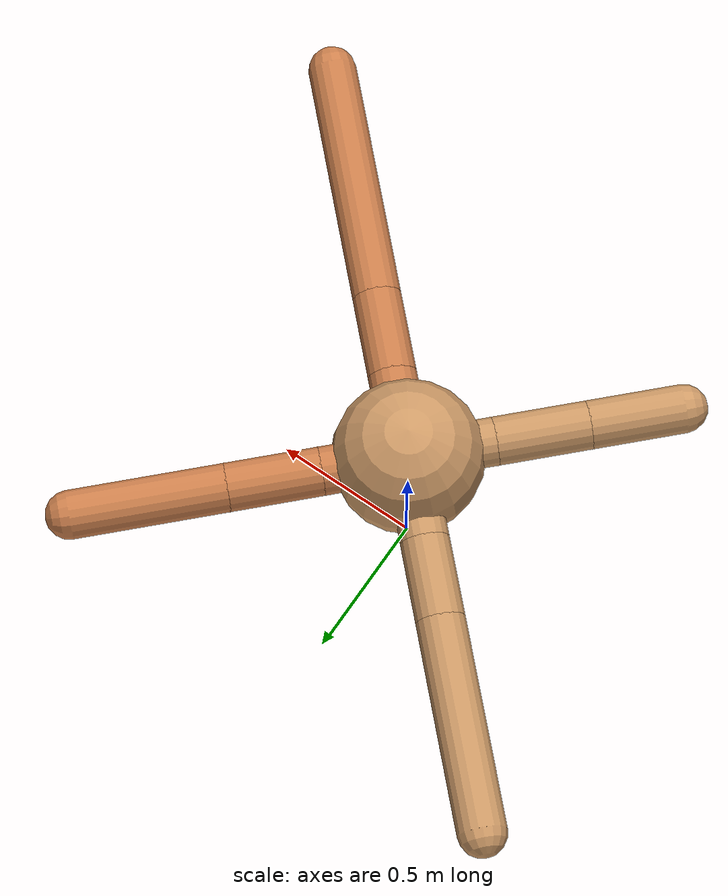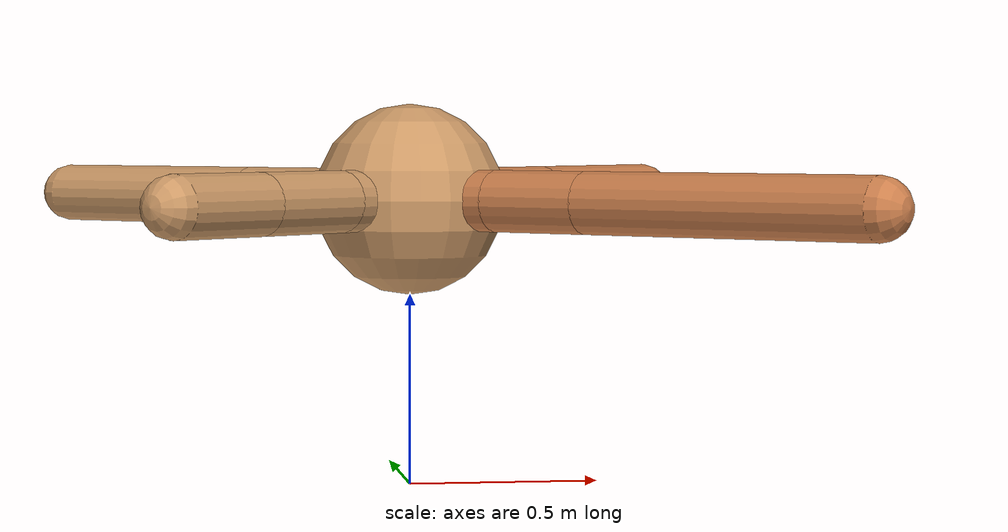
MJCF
<mujoco model="ant">
  <compiler angle="degree" coordinate="local" inertiafromgeom="true" />
  <option integrator="RK4" timestep="0.01" />
  <custom>
    <numeric data="0.0 0.0 0.55 1.0 0.0 0.0 0.0 0.0 1.0 0.0 -1.0 0.0 -1.0 0.0 1.0" name="init_qpos" />
  </custom>
  <default>
    <joint armature="1" damping="1" limited="true" />
    <geom conaffinity="0" condim="3" density="5.0" friction="1.5 0.1 0.1" margin="0.01" rgba="0.8 0.6 0.4 1" />
  </default>
  <worldbody>
    <body name="torso" pos="0 0 0.75">
      <geom name="torso_geom" pos="0 0 0" size="0.25" type="sphere" />

      <body name="front_left_leg" pos="0 0 0">
        <geom fromto="0.0 0.0 0.0 0.2 0.2 0.0" name="aux_1_geom" size="0.08" type="capsule" rgba=".8 .5 .3 1" />
        <body name="aux_1" pos="0.2 0.2 0.0">
          <joint axis="0 0 1" name="hip_1" pos="0.0 0.0 0.0" range="-40 40" type="hinge" />
          <geom fromto="0.0 0.0 0.0 0.21641676483995165 0.21641676483995165 0.0" name="left_leg_geom" size="0.08" type="capsule" rgba=".8 .5 .3 1" />
          <body pos="0.21641676483995165 0.21641676483995165 0.0" name="front_left_foot">
            <joint axis="-1 1 0" name="ankle_1" pos="0.0 0.0 0.0" range="30 100" type="hinge" />
            <geom fromto="0.0 0.0 0.0 0.35945613774381824 0.35945613774381824 0.0" name="left_ankle_geom" size="0.08" type="capsule" rgba=".8 .5 .3 1" />
          </body>
        </body>
      </body>
      <body name="front_right_leg" pos="0 0 0">
        <geom fromto="0.0 0.0 0.0 -0.20423607149539455 0.20423607149539455 0.0" name="aux_2_geom" size="0.08" type="capsule" />
        <body name="aux_2" pos="-0.20423607149539455 0.20423607149539455 0.0">
          <joint axis="0 0 1" name="hip_2" pos="0.0 0.0 0.0" range="-40 40" type="hinge" />
          <geom fromto="0.0 0.0 0.0 -0.1889764588465865 0.1889764588465865 0.0" name="right_leg_geom" size="0.08" type="capsule" />
          <body pos="-0.1889764588465865 0.1889764588465865 0.0" name="front_right_foot">
            <joint axis="1 1 0" name="ankle_2" pos="0.0 0.0 0.0" range="-100 -30" type="hinge" />
            <geom fromto="0.0 0.0 0.0 -0.49200950379749 0.49200950379749 0.0" name="right_ankle_geom" size="0.08" type="capsule" />
          </body>
        </body>
      </body>
      <body name="left_back_leg" pos="0 0 0">
        <geom fromto="0.0 0.0 0.0 -0.2 -0.2 0.0" name="aux_3_geom" size="0.08" type="capsule" />
        <body name="aux_3" pos="-0.2 -0.2 0.0">
          <joint axis="0 0 1" name="hip_3" pos="0.0 0.0 0.0" range="-40 40" type="hinge" />
          <geom fromto="0.0 0.0 0.0 -0.2173650872951366 -0.2173650872951366 0.0" name="back_leg_geom" size="0.08" type="capsule" />
          <body pos="-0.2173650872951366 -0.2173650872951366 0.0" name="left_back_foot">
            <joint axis="-1 1 0" name="ankle_3" pos="0.0 0.0 0.0" range="-100 -30" type="hinge" />
            <geom fromto="0.0 0.0 0.0 -0.2199230776944442 -0.2199230776944442 0.0" name="third_ankle_geom" size="0.08" type="capsule" />
          </body>
        </body>
      </body>
      <body name="right_back_leg" pos="0 0 0">
        <geom fromto="0.0 0.0 0.0 0.2 -0.2 0.0" name="aux_4_geom" size="0.08" type="capsule" rgba=".8 .5 .3 1" />
        <body name="aux_4" pos="0.2 -0.2 0.0">
          <joint axis="0 0 1" name="hip_4" pos="0.0 0.0 0.0" range="-40 40" type="hinge" />
          <geom fromto="0.0 0.0 0.0 0.1963397966740288 -0.1963397966740288 0.0" name="rightback_leg_geom" size="0.08" type="capsule" rgba=".8 .5 .3 1" />
          <body pos="0.1963397966740288 -0.1963397966740288 0.0" name="right_back_foot">
            <joint axis="1 1 0" name="ankle_4" pos="0.0 0.0 0.0" range="30 100" type="hinge" />
            <geom fromto="0.0 0.0 0.0 0.5824500072252441 -0.5824500072252441 0.0" name="fourth_ankle_geom" size="0.08" type="capsule" rgba=".8 .5 .3 1" />
          </body>
        </body>
      </body>
    </body>
  </worldbody>
  <actuator>
    <motor ctrllimited="true" ctrlrange="-1.0 1.0" joint="hip_4" gear="150" />
    <motor ctrllimited="true" ctrlrange="-1.0 1.0" joint="ankle_4" gear="150" />
    <motor ctrllimited="true" ctrlrange="-1.0 1.0" joint="hip_1" gear="150" />
    <motor ctrllimited="true" ctrlrange="-1.0 1.0" joint="ankle_1" gear="150" />
    <motor ctrllimited="true" ctrlrange="-1.0 1.0" joint="hip_2" gear="150" />
    <motor ctrllimited="true" ctrlrange="-1.0 1.0" joint="ankle_2" gear="150" />
    <motor ctrllimited="true" ctrlrange="-1.0 1.0" joint="hip_3" gear="150" />
    <motor ctrllimited="true" ctrlrange="-1.0 1.0" joint="ankle_3" gear="150" />
  </actuator>
</mujoco>
